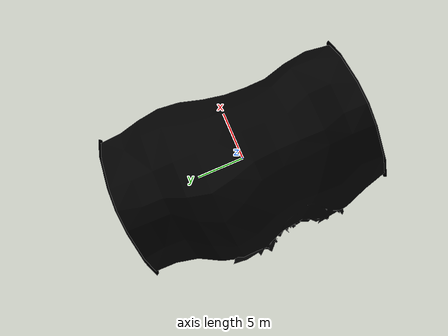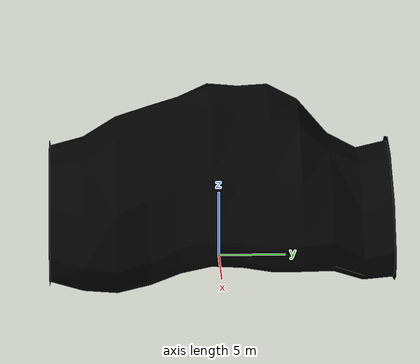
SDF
<sdf version="1.6">
  <model name="Cave Straight 04 Lights Type B">
    <include>
      <name>cave_straight_04</name>
      <uri>model://Cave Straight 04 Type B</uri>
    </include>
    <static>true</static>
    <link name="lights">
      <light name="spot_light1" type="spot">
        <pose>0 8 8.0 0 0 0</pose>
        <diffuse>0 0 0 1</diffuse>
        <specular>0 0 0 1</specular>
        <attenuation>
          <range>20</range>
          <linear>0.2</linear>
          <constant>0.3</constant>
          <quadratic>0.01</quadratic>
        </attenuation>
        <spot>
          <inner_angle>2.0</inner_angle>
          <outer_angle>3.1</outer_angle>
          <falloff>0.6</falloff>
        </spot>
        <cast_shadows>false</cast_shadows>
      </light>

      <light name="spot_light2" type="spot">
        <pose>0 -6.0 4.5 0 0 0</pose>
        <diffuse>0 0 0 1</diffuse>
        <specular>0 0 0 1</specular>
        <attenuation>
          <range>20</range>
          <linear>0.2</linear>
          <constant>0.3</constant>
          <quadratic>0.01</quadratic>
        </attenuation>
        <spot>
          <inner_angle>2.0</inner_angle>
          <outer_angle>3.1</outer_angle>
          <falloff>0.6</falloff>
        </spot>
        <cast_shadows>false</cast_shadows>
      </light>
    </link>
  </model>
</sdf>

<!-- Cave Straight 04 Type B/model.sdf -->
<sdf version="1.6">
  <model name="Cave Straight 04 Type B">
    <static>true</static>
    <link name="base_link">
      <collision name="collision">
        <pose>0 0 0 0 0 0</pose>
        <geometry>
          <mesh>
            <uri>model://Cave Straight 04 Type B/meshes/cavestraight04.dae</uri>
            <scale>1.0 1.0 1.0</scale>
          </mesh>
        </geometry>
      </collision>
      <visual name="StriatedRock_visual">
        <geometry>
          <mesh>
            <uri>model://Cave Straight 04 Type B/meshes/cavestraight04.dae</uri>
            <submesh>
              <name>StriatedRock</name>
              <center>false</center>
            </submesh>
          </mesh>
        </geometry>
        <material>
          <diffuse>0 0 0 1</diffuse>
          <specular>0 0 0 1</specular>
          <pbr>
            <metal>
              <albedo_map>model://Cave Straight 04 Type B/materials/textures/StriatedRock_Albedo.png</albedo_map>
              <normal_map>model://Cave Straight 04 Type B/materials/textures/StriatedRock_Normal.png</normal_map>
              <roughness_map>model://Cave Straight 04 Type B/materials/textures/StriatedRock_Roughness.png</roughness_map>
            </metal>
          </pbr>

          <script>
            <uri>model://Cave Straight 04 Type B/materials/scripts/</uri>
            <uri>model://Cave Straight 04 Type B/materials/textures/</uri>
            <name>CaveTile/StriatedRock_Diffuse</name>
          </script>
        </material>
      </visual>
      <visual name="RockPile_visual">
        <geometry>
          <mesh>
            <uri>model://Cave Straight 04 Type B/meshes/cavestraight04.dae</uri>
            <submesh>
              <name>RockPile</name>
              <center>false</center>
            </submesh>
          </mesh>
        </geometry>
        <material>
          <diffuse>0 0 0 1</diffuse>
          <specular>0 0 0 1</specular>
          <pbr>
            <metal>
              <albedo_map>model://Cave Straight 04 Type B/materials/textures/RockPile_Albedo.png</albedo_map>
              <normal_map>model://Cave Straight 04 Type B/materials/textures/RockPile_Normal.png</normal_map>
              <roughness_map>model://Cave Straight 04 Type B/materials/textures/RockPile_Roughness.png</roughness_map>
            </metal>
          </pbr>

          <script>
            <uri>model://Cave Straight 04 Type B/materials/scripts/</uri>
            <uri>model://Cave Straight 04 Type B/materials/textures/</uri>
            <name>CaveTile/RockPile_Diffuse</name>
          </script>
        </material>
      </visual>
      <visual name="CaveWall_visual">
        <geometry>
          <mesh>
            <uri>model://Cave Straight 04 Type B/meshes/cavestraight04.dae</uri>
            <submesh>
              <name>CaveWall</name>
              <center>false</center>
            </submesh>
          </mesh>
        </geometry>
        <material>
          <diffuse>0 0 0 1</diffuse>
          <specular>0 0 0 1</specular>
          <pbr>
            <metal>
              <albedo_map>model://Cave Straight 04 Type B/materials/textures/CaveWall_Albedo.png</albedo_map>
              <normal_map>model://Cave Straight 04 Type B/materials/textures/CaveWall_Normal.png</normal_map>
              <roughness_map>model://Cave Straight 04 Type B/materials/textures/CaveWall_Roughness.png</roughness_map>
            </metal>
          </pbr>

          <script>
            <uri>model://Cave Straight 04 Type B/materials/scripts/</uri>
            <uri>model://Cave Straight 04 Type B/materials/textures/</uri>
            <name>CaveTile/CaveWall_Diffuse</name>
          </script>
        </material>
      </visual>
    </link>
  </model>
</sdf>
